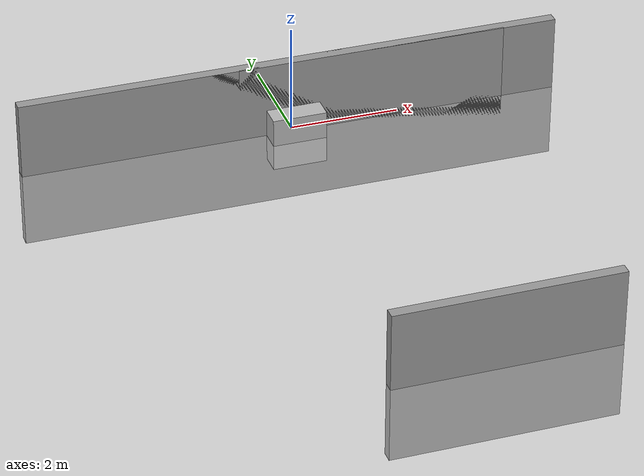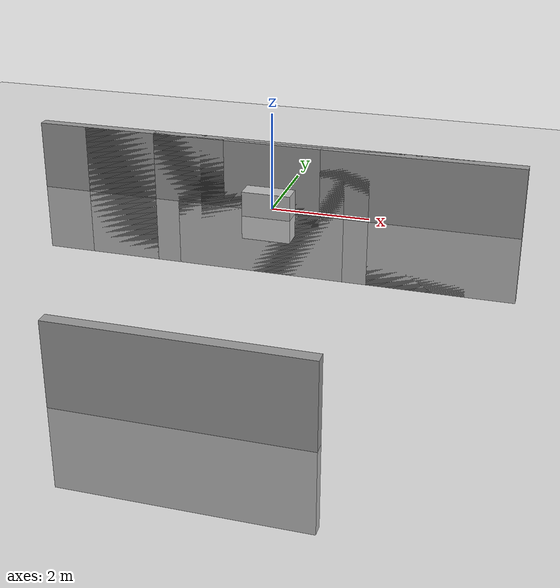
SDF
<sdf version="1.4">
 <world name="default">
  <light name="sun" type="directional">
   <pose>0 0 10 0 -0 0</pose>
   <diffuse>0.8 0.8 0.8 1</diffuse>
   <specular>0.2 0.2 0.2 1</specular>
   <attenuation>
    <range>1000</range>
    <constant>0.9</constant>
    <linear>0.01</linear>
    <quadratic>0.001</quadratic>
   </attenuation>
   <direction>-0.5 0.1 -0.9</direction>
  </light>
  <model name="ground_plane">
   <static>1</static>
   <link name="link">
    <collision name="collision">
     <geometry><plane><normal>0 0 1</normal><size>100 100</size></plane></geometry>
     <surface><friction><ode><mu>100</mu><mu2>50</mu2></ode></friction></surface>
    </collision>
    <visual name="visual">
     <cast_shadows>0</cast_shadows>
     <geometry><plane><normal>0 0 1</normal><size>100 100</size></plane></geometry>
     <material>
      <script><uri>file://media/materials/scripts/gazebo.material</uri><name>Gazebo/Grey</name></script>
     </material>
    </visual>
    <velocity_decay><linear>0</linear><angular>0</angular></velocity_decay>
   </link>
  </model>
  <physics type="ode">
   <max_step_size>0.001</max_step_size>
   <real_time_factor>1</real_time_factor>
   <real_time_update_rate>1000</real_time_update_rate>
   <gravity>0 0 -9.8</gravity>
  </physics>
  <scene><ambient>0.4 0.4 0.4 1</ambient><background>0.7 0.7 0.7 1</background><shadows>1</shadows></scene>
  <model name="anomaly_1">
   <static>1</static>
   <link name="link">
    <collision name="collision"><geometry><box><size>1 1 1</size></box></geometry></collision>
    <visual name="visual">
     <cast_shadows>0</cast_shadows>
     <geometry><box><size>1 1 1</size></box></geometry>
     <material>
      <script>
       <uri>file://simulated_drone/worlds/anomaly_detection/media/anomaly.material</uri>
       <name>anomaly</name>
      </script>
     </material>
    </visual>
    <velocity_decay><linear>0</linear><angular>0</angular></velocity_decay>
   </link>
  </model>
  <model name="grey_wall_1">
   <static>1</static>
   <link name="link">
    <collision name="collision"><geometry><box><size>10 0.2 2.8</size></box></geometry></collision>
    <visual name="visual">
     <cast_shadows>0</cast_shadows>
     <geometry><box><size>10 0.2 2.8</size></box></geometry>
     <material>
      <script>
       <uri>model://grey_wall/materials/scripts</uri>
       <uri>model://grey_wall/materials/textures</uri>
       <name>vrc/grey_wall</name>
      </script>
     </material>
    </visual>
    <velocity_decay><linear>0</linear><angular>0</angular></velocity_decay>
   </link>
  </model>
  <model name="grey_wall_2">
   <static>1</static>
   <link name="link">
    <collision name="collision"><geometry><box><size>5 0.2 2.8</size></box></geometry></collision>
    <visual name="visual">
     <cast_shadows>0</cast_shadows>
     <geometry><box><size>5 0.2 2.8</size></box></geometry>
     <material>
      <script>
       <uri>model://grey_wall/materials/scripts</uri>
       <uri>model://grey_wall/materials/textures</uri>
       <name>vrc/grey_wall</name>
      </script>
     </material>
    </visual>
    <velocity_decay><linear>0</linear><angular>0</angular></velocity_decay>
   </link>
  </model>
  <model name="grey_wall_3">
   <static>1</static>
   <link name="link">
    <collision name="collision"><geometry><box><size>10 0.2 2.8</size></box></geometry></collision>
    <visual name="visual">
     <cast_shadows>0</cast_shadows>
     <geometry><box><size>10 0.2 2.8</size></box></geometry>
     <material>
      <script>
       <uri>model://grey_wall/materials/scripts</uri>
       <uri>model://grey_wall/materials/textures</uri>
       <name>vrc/grey_wall</name>
      </script>
     </material>
    </visual>
    <velocity_decay><linear>0</linear><angular>0</angular></velocity_decay>
   </link>
  </model>
  <model name="grey_wall_4">
   <static>1</static>
   <link name="link">
    <collision name="collision"><geometry><box><size>2 0.2 2.8</size></box></geometry></collision>
    <visual name="visual">
     <cast_shadows>0</cast_shadows>
     <geometry><box><size>2 0.2 2.8</size></box></geometry>
     <material>
      <script>
       <uri>model://grey_wall/materials/scripts</uri>
       <uri>model://grey_wall/materials/textures</uri>
       <name>vrc/grey_wall</name>
      </script>
     </material>
    </visual>
    <velocity_decay><linear>0</linear><angular>0</angular></velocity_decay>
   </link>
  </model>
  <model name="grey_wall_5">
   <static>1</static>
   <link name="link">
    <collision name="collision"><geometry><box><size>3 0.2 2.8</size></box></geometry></collision>
    <visual name="visual">
     <cast_shadows>0</cast_shadows>
     <geometry><box><size>3 0.2 2.8</size></box></geometry>
     <material>
      <script>
       <uri>model://grey_wall/materials/scripts</uri>
       <uri>model://grey_wall/materials/textures</uri>
       <name>vrc/grey_wall</name>
      </script>
     </material>
    </visual>
    <velocity_decay><linear>0</linear><angular>0</angular></velocity_decay>
   </link>
  </model>
  <model name="grey_wall_6">
   <static>1</static>
   <link name="link">
    <collision name="collision"><geometry><box><size>4 0.2 2.8</size></box></geometry></collision>
    <visual name="visual">
     <cast_shadows>0</cast_shadows>
     <geometry><box><size>4 0.2 2.8</size></box></geometry>
     <material>
      <script>
       <uri>model://grey_wall/materials/scripts</uri>
       <uri>model://grey_wall/materials/textures</uri>
       <name>vrc/grey_wall</name>
      </script>
     </material>
    </visual>
    <velocity_decay><linear>0</linear><angular>0</angular></velocity_decay>
   </link>
   <pose>1 -8 0 0 -0 0</pose>
  </model>
  <model name="grey_wall_7">
   <static>1</static>
   <link name="link">
    <collision name="collision"><geometry><box><size>3 0.2 2.8</size></box></geometry></collision>
    <visual name="visual">
     <cast_shadows>0</cast_shadows>
     <geometry><box><size>3 0.2 2.8</size></box></geometry>
     <material>
      <script>
       <uri>model://grey_wall/materials/scripts</uri>
       <uri>model://grey_wall/materials/textures</uri>
       <name>vrc/grey_wall</name>
      </script>
     </material>
    </visual>
    <velocity_decay><linear>0</linear><angular>0</angular></velocity_decay>
   </link>
  </model>
  <model name="grey_wall_8">
   <static>1</static>
   <link name="link">
    <collision name="collision"><geometry><box><size>8 0.2 2.8</size></box></geometry></collision>
    <visual name="visual">
     <cast_shadows>0</cast_shadows>
     <geometry><box><size>8 0.2 2.8</size></box></geometry>
     <material>
      <script>
       <uri>model://grey_wall/materials/scripts</uri>
       <uri>model://grey_wall/materials/textures</uri>
       <name>vrc/grey_wall</name>
      </script>
     </material>
    </visual>
    <velocity_decay><linear>0</linear><angular>0</angular></velocity_decay>
   </link>
  </model>
  <model name="grey_wall_9">
   <static>1</static>
   <link name="link">
    <collision name="collision"><geometry><box><size>5 0.2 2.8</size></box></geometry></collision>
    <visual name="visual">
     <cast_shadows>0</cast_shadows>
     <geometry><box><size>5 0.2 2.8</size></box></geometry>
     <material>
      <script>
       <uri>model://grey_wall/materials/scripts</uri>
       <uri>model://grey_wall/materials/textures</uri>
       <name>vrc/grey_wall</name>
      </script>
     </material>
    </visual>
    <velocity_decay><linear>0</linear><angular>0</angular></velocity_decay>
   </link>
  </model>
  <model name="grey_wall_10">
   <static>1</static>
   <link name="link">
    <collision name="collision"><geometry><box><size>5 0.2 2.8</size></box></geometry></collision>
    <visual name="visual">
     <cast_shadows>0</cast_shadows>
     <geometry><box><size>5 0.2 2.8</size></box></geometry>
     <material>
      <script>
       <uri>model://grey_wall/materials/scripts</uri>
       <uri>model://grey_wall/materials/textures</uri>
       <name>vrc/grey_wall</name>
      </script>
     </material>
    </visual>
    <velocity_decay><linear>0</linear><angular>0</angular></velocity_decay>
   </link>
  </model>
  <model name="grey_wall_11">
   <static>1</static>
   <link name="link">
    <collision name="collision"><geometry><box><size>4 0.2 2.8</size></box></geometry></collision>
    <visual name="visual">
     <cast_shadows>0</cast_shadows>
     <geometry><box><size>4 0.2 2.8</size></box></geometry>
     <material>
      <script>
       <uri>model://grey_wall/materials/scripts</uri>
       <uri>model://grey_wall/materials/textures</uri>
       <name>vrc/grey_wall</name>
      </script>
     </material>
    </visual>
    <velocity_decay><linear>0</linear><angular>0</angular></velocity_decay>
   </link>
  </model>
  <model name="grey_wall_12">
   <static>1</static>
   <link name="link">
    <collision name="collision"><geometry><box><size>5 0.2 2.8</size></box></geometry></collision>
    <visual name="visual">
     <cast_shadows>0</cast_shadows>
     <geometry><box><size>5 0.2 2.8</size></box></geometry>
     <material>
      <script>
       <uri>model://grey_wall/materials/scripts</uri>
       <uri>model://grey_wall/materials/textures</uri>
       <name>vrc/grey_wall</name>
      </script>
     </material>
    </visual>
    <velocity_decay><linear>0</linear><angular>0</angular></velocity_decay>
   </link>
  </model>
 </world>
</sdf>
